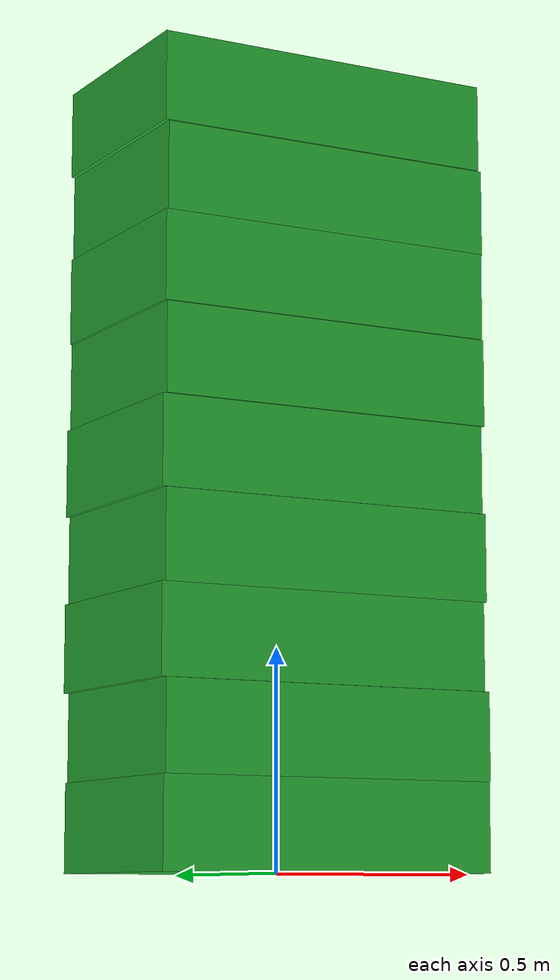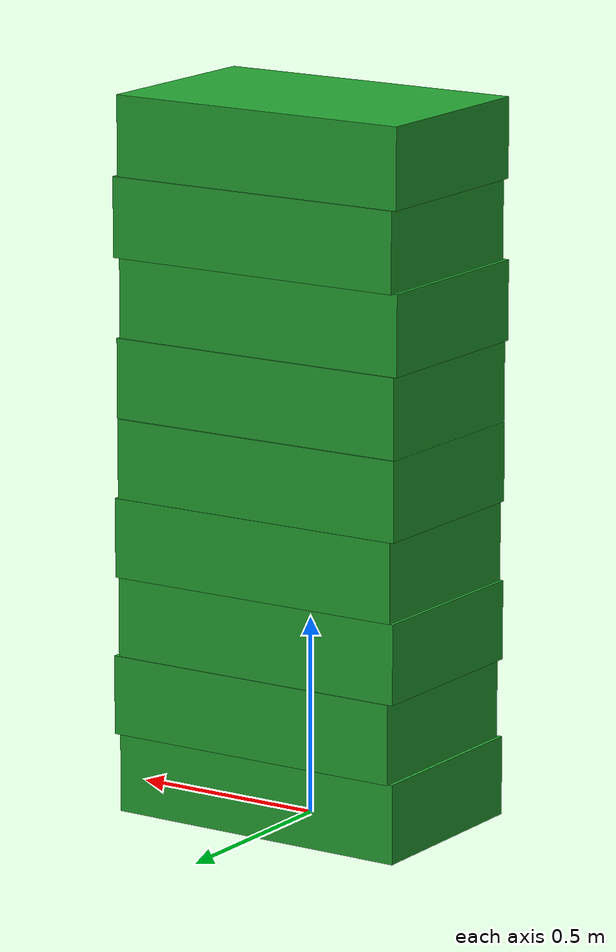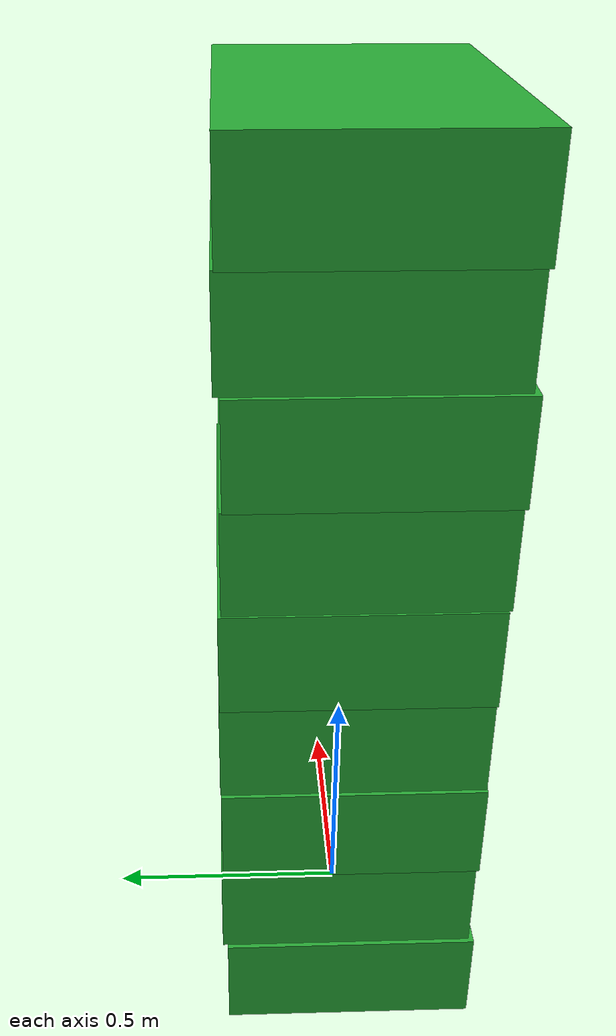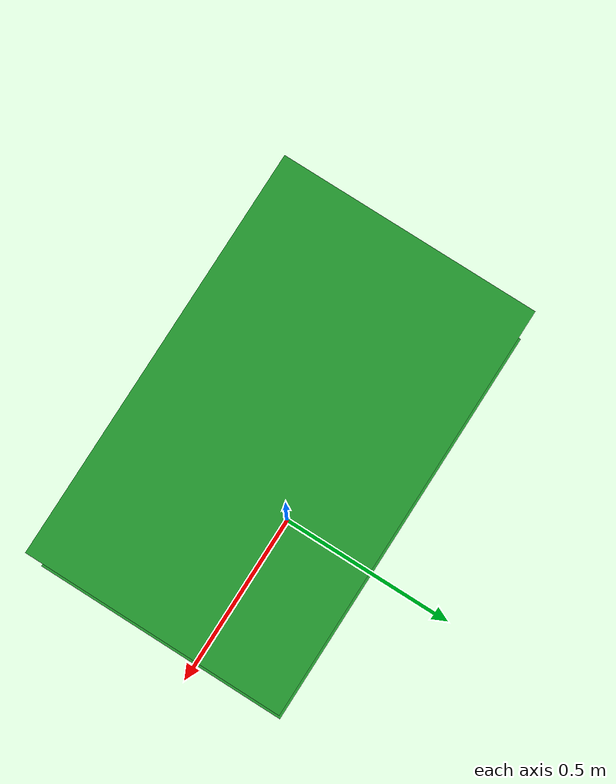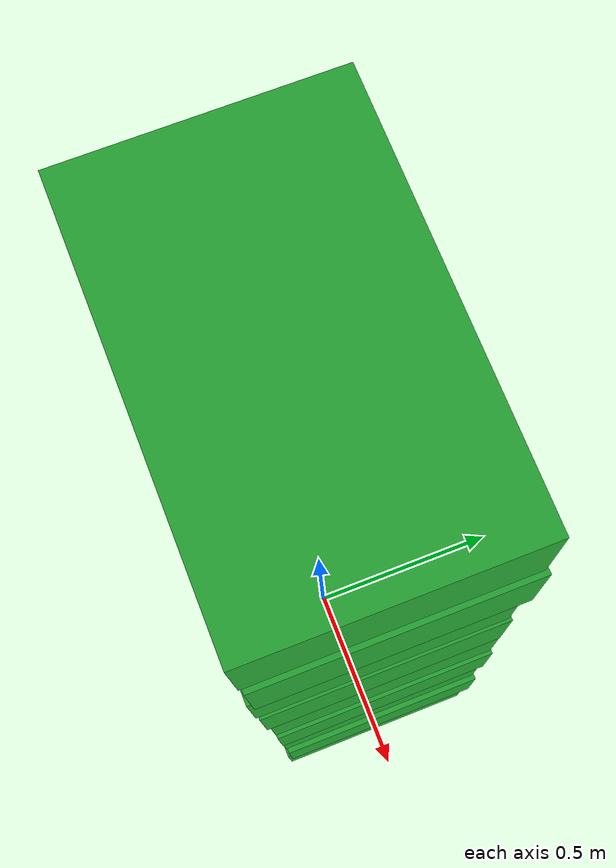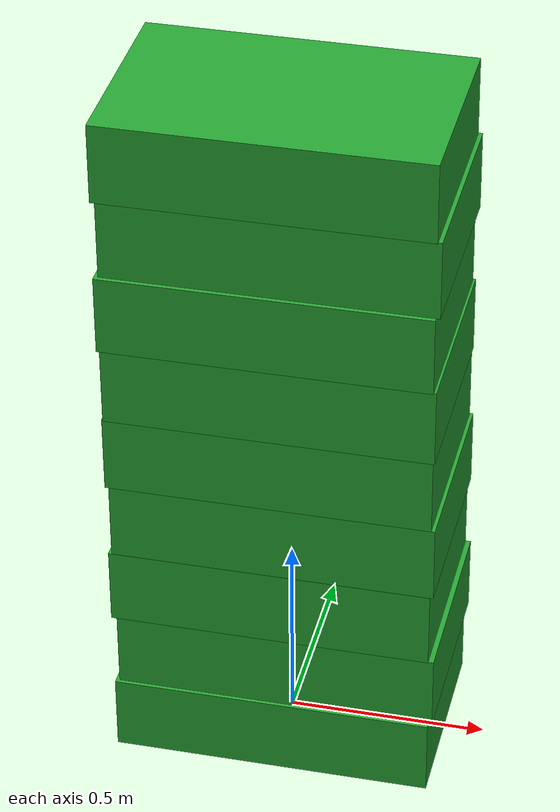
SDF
<?xml version="1.0" encoding="UTF-8"?>
<sdf version='1.4'>
    <model name="baggage_D_x9">
        <model name="baggage_D_0">
            <static>true</static>
            <link name="link">
                <collision name="collision">
                    <geometry>
                    <box>
                        <size>0.8 0.5 0.2</size>
                    </box>
                    </geometry>
                </collision>
                <visual name="visual">
                    <geometry>
                    <box>
                        <size>0.8 0.5 0.2</size>
                    </box>
                    </geometry>
                    <material>
                    <script>
                        <uri>file://media/materials/scripts/gazebo.material</uri>
                        <name>Gazebo/Green</name>
                    </script>
                    </material>
                </visual>
            </link>
            <pose frame=''>0 0 0.1 0 0 0</pose>
        </model>
        <model name="baggage_D_1">
            <static>true</static>
            <link name="link">
                <collision name="collision">
                    <geometry>
                    <box>
                        <size>0.8 0.5 0.2</size>
                    </box>
                    </geometry>
                </collision>
                <visual name="visual">
                    <geometry>
                    <box>
                        <size>0.8 0.5 0.2</size>
                    </box>
                    </geometry>
                    <material>
                    <script>
                        <uri>file://media/materials/scripts/gazebo.material</uri>
                        <name>Gazebo/Green</name>
                    </script>
                    </material>
                </visual>
            </link>
            <pose frame=''>0.0092 0.0098 0.3 0 0 0</pose>
        </model>
        <model name="baggage_D_2">
            <static>true</static>
            <link name="link">
                <collision name="collision">
                    <geometry>
                    <box>
                        <size>0.8 0.5 0.2</size>
                    </box>
                    </geometry>
                </collision>
                <visual name="visual">
                    <geometry>
                    <box>
                        <size>0.8 0.5 0.2</size>
                    </box>
                    </geometry>
                    <material>
                    <script>
                        <uri>file://media/materials/scripts/gazebo.material</uri>
                        <name>Gazebo/Green</name>
                    </script>
                    </material>
                </visual>
            </link>
            <pose frame=''>-0.0038 0.0073 0.5 0 0 0</pose>
        </model>
        <model name="baggage_D_3">
            <static>true</static>
            <link name="link">
                <collision name="collision">
                    <geometry>
                    <box>
                        <size>0.8 0.5 0.2</size>
                    </box>
                    </geometry>
                </collision>
                <visual name="visual">
                    <geometry>
                    <box>
                        <size>0.8 0.5 0.2</size>
                    </box>
                    </geometry>
                    <material>
                    <script>
                        <uri>file://media/materials/scripts/gazebo.material</uri>
                        <name>Gazebo/Green</name>
                    </script>
                    </material>
                </visual>
            </link>
            <pose frame=''>0.0044 0.0085 0.7 0 0 0</pose>
        </model>
        <model name="baggage_D_4">
            <static>true</static>
            <link name="link">
                <collision name="collision">
                    <geometry>
                    <box>
                        <size>0.8 0.5 0.2</size>
                    </box>
                    </geometry>
                </collision>
                <visual name="visual">
                    <geometry>
                    <box>
                        <size>0.8 0.5 0.2</size>
                    </box>
                    </geometry>
                    <material>
                    <script>
                        <uri>file://media/materials/scripts/gazebo.material</uri>
                        <name>Gazebo/Green</name>
                    </script>
                    </material>
                </visual>
            </link>
            <pose frame=''>-0.0044 0.0075 0.9 0 0 0</pose>
        </model>
        <model name="baggage_D_5">
            <static>true</static>
            <link name="link">
                <collision name="collision">
                    <geometry>
                    <box>
                        <size>0.8 0.5 0.2</size>
                    </box>
                    </geometry>
                </collision>
                <visual name="visual">
                    <geometry>
                    <box>
                        <size>0.8 0.5 0.2</size>
                    </box>
                    </geometry>
                    <material>
                    <script>
                        <uri>file://media/materials/scripts/gazebo.material</uri>
                        <name>Gazebo/Green</name>
                    </script>
                    </material>
                </visual>
            </link>
            <pose frame=''>0.0002 0.0017 1.1 0 0 0</pose>
        </model>
        <model name="baggage_D_6">
            <static>true</static>
            <link name="link">
                <collision name="collision">
                    <geometry>
                    <box>
                        <size>0.8 0.5 0.2</size>
                    </box>
                    </geometry>
                </collision>
                <visual name="visual">
                    <geometry>
                    <box>
                        <size>0.8 0.5 0.2</size>
                    </box>
                    </geometry>
                    <material>
                    <script>
                        <uri>file://media/materials/scripts/gazebo.material</uri>
                        <name>Gazebo/Green</name>
                    </script>
                    </material>
                </visual>
            </link>
            <pose frame=''>-0.0057 -0.0032 1.3 0 0 0</pose>
        </model>
        <model name="baggage_D_7">
            <static>true</static>
            <link name="link">
                <collision name="collision">
                    <geometry>
                    <box>
                        <size>0.8 0.5 0.2</size>
                    </box>
                    </geometry>
                </collision>
                <visual name="visual">
                    <geometry>
                    <box>
                        <size>0.8 0.5 0.2</size>
                    </box>
                    </geometry>
                    <material>
                    <script>
                        <uri>file://media/materials/scripts/gazebo.material</uri>
                        <name>Gazebo/Green</name>
                    </script>
                    </material>
                </visual>
            </link>
            <pose frame=''>0.0039 0.0078 1.5 0 0 0</pose>
        </model>
        <model name="baggage_D_8">
            <static>true</static>
            <link name="link">
                <collision name="collision">
                    <geometry>
                    <box>
                        <size>0.8 0.5 0.2</size>
                    </box>
                    </geometry>
                </collision>
                <visual name="visual">
                    <geometry>
                    <box>
                        <size>0.8 0.5 0.2</size>
                    </box>
                    </geometry>
                    <material>
                    <script>
                        <uri>file://media/materials/scripts/gazebo.material</uri>
                        <name>Gazebo/Green</name>
                    </script>
                    </material>
                </visual>
            </link>
            <pose frame=''>-0.0060 0.0028 1.7 0 0 0</pose>
        </model>
    </model>
</sdf>
